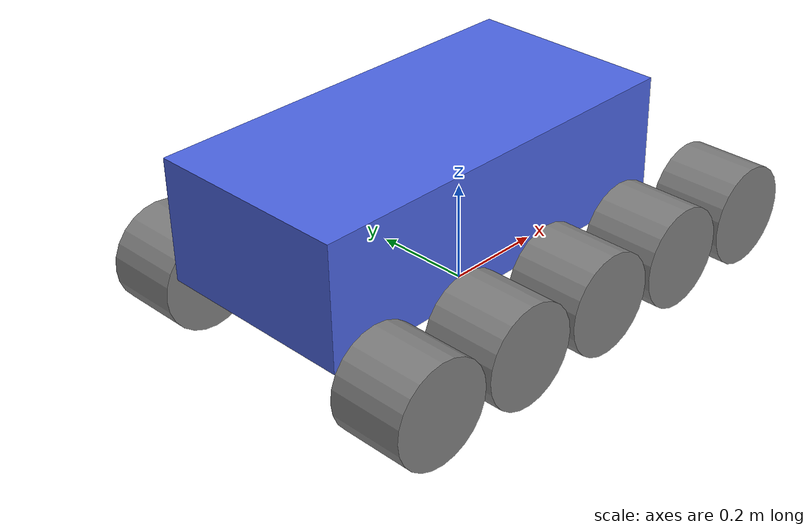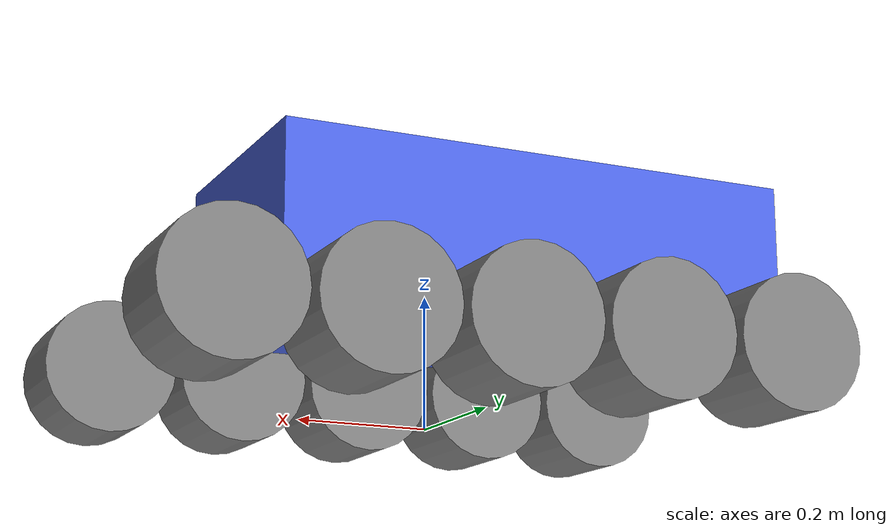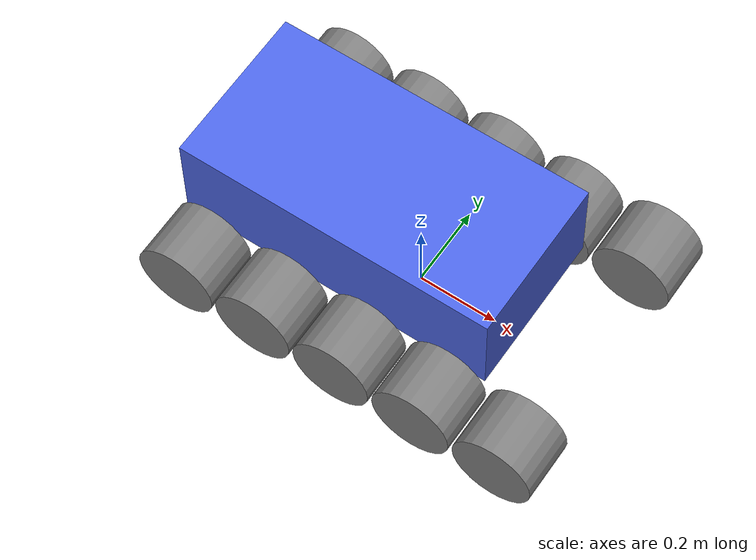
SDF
<?xml version="1.0" ?>
<sdf version="1.9">

  <model name="tracked_v2">
    <static>false</static>
    <pose>0 0 0 0 0 0</pose>

    <link name="chassis_link">
      <pose>-0.1 0 0.26 0 0 0</pose>

      <inertial>
          <mass>100.0</mass>
          <inertia>
          <ixx>1.81</ixx> <iyy>5.81</iyy> <izz>6.67</izz>
          <ixy>0.0</ixy> <ixz>0.0</ixz> <iyz>0.0</iyz>
          </inertia>
      </inertial>

      <collision name="chassis_collision">
          <geometry>
          <box><size>0.8 0.4 0.24</size></box>
          </geometry>
      </collision>

      <visual name="chassis_visual">
          <geometry>
          <box><size>0.8 0.4 0.24</size></box>
          </geometry>
          <material>
          <ambient>0.3 0.4 0.9 1</ambient>
          <diffuse>0.3 0.4 0.9 1</diffuse>
          </material>
      </visual>

      <sensor name="imu_sensor" type="imu">
          <always_on>true</always_on>
          <update_rate>100</update_rate>
          <visualize>false</visualize>
          <topic>imu</topic>
          <pose>0.1 0 0 0 0 0</pose>

      </sensor>

      <sensor name="navsat_sensor" type="navsat">
        <always_on>true</always_on>
        <update_rate>10.0</update_rate>
        <topic>navsat</topic>
        <visualize>false</visualize>
          <pose>0.1 0 0 0 0 0</pose>
      </sensor>

      <sensor name="magnetometer_sensor" type="magnetometer">
        <always_on>true</always_on>
        <update_rate>100.0</update_rate>
        <topic>magnetometer</topic>
          <pose>0.1 0 0 0 0 0</pose>

      </sensor>

    </link>

    <link name="wheel_R1_link">
        <pose>0.42 -0.285 0.1 1.5708 0 0</pose>

      <visual name="wheel_R1_visual">
        <geometry>
          <cylinder>
            <radius>0.1</radius>
            <length>0.15</length>
          </cylinder>
        </geometry>
        <material>
          <ambient>0.5 0.5 0.5 1</ambient>
          <diffuse>0.5 0.5 0.5 1</diffuse>
          <specular>0.1 0.1 0.1 1</specular>
        </material>
      </visual>

      <collision name="wheel_R1_collision">
        <geometry>
          <cylinder>
            <radius>0.1</radius>
            <length>0.15</length>
          </cylinder>
        </geometry>

        <surface>
          <friction>
            <ode>
              <mu>1.2</mu>
              <mu2>0.7</mu2>
              <fdir1>1 0 0</fdir1>
              <slip1>0.0</slip1>
              <slip2>0.001</slip2>
            </ode>
          </friction>
          <contact>
            <ode>
              <soft_cfm>0.002</soft_cfm>
              <soft_erp>0.002</soft_erp>
              <kp>1000</kp>
              <kd>500</kd>
            </ode>
          </contact>
        </surface>
      </collision>

      <inertial>
        <mass>5.0</mass>
        <inertia>
          <ixx>0.025</ixx>
          <iyy>0.025</iyy>
          <izz>0.031</izz>
          <ixy>0</ixy>
          <ixz>0</ixz>
          <iyz>0</iyz>
        </inertia>
      </inertial>
    </link>

    <joint name="wheel_R1_joint" type="revolute">
      <parent>chassis_link</parent>
      <child>wheel_R1_link</child>

      <pose>0 0 0 0 0 0</pose>

      <axis>
        <xyz>0 0 -1</xyz>

        <limit>
          <lower>-1.79769e+308</lower>
          <upper>1.79769e+308</upper>
          <effort>10000.0</effort>
          <velocity>10000.0</velocity>
        </limit>

        <dynamics>
          <damping>0.1</damping>
          <friction>0.01</friction>
        </dynamics>
      </axis>

      <physics>
        <provide_feedback>true</provide_feedback>
      </physics>

    </joint>

    <link name="wheel_R2_link">
        <pose>0.21 -0.285 0.1 1.5708 0 0</pose>

      <visual name="wheel_R2_visual">
        <geometry>
          <cylinder>
            <radius>0.1</radius>
            <length>0.15</length>
          </cylinder>
        </geometry>
        <material>
          <ambient>0.5 0.5 0.5 1</ambient>
          <diffuse>0.5 0.5 0.5 1</diffuse>
          <specular>0.1 0.1 0.1 1</specular>
        </material>
      </visual>

      <collision name="wheel_R2_collision">
        <geometry>
          <cylinder>
            <radius>0.1</radius>
            <length>0.15</length>
          </cylinder>
        </geometry>

        <surface>
          <friction>
            <ode>
              <mu>1.2</mu>
              <mu2>0.7</mu2>
              <fdir1>1 0 0</fdir1>
              <slip1>0.0</slip1>
              <slip2>0.001</slip2>
            </ode>
          </friction>
          <contact>
            <ode>
              <soft_cfm>0.002</soft_cfm>
              <soft_erp>0.002</soft_erp>
              <kp>1000</kp>
              <kd>500</kd>
            </ode>
          </contact>
        </surface>
      </collision>

      <inertial>
        <mass>5.0</mass>
        <inertia>
          <ixx>0.025</ixx>
          <iyy>0.025</iyy>
          <izz>0.031</izz>
          <ixy>0</ixy>
          <ixz>0</ixz>
          <iyz>0</iyz>
        </inertia>
      </inertial>
    </link>

    <joint name="wheel_R2_joint" type="revolute">
      <parent>chassis_link</parent>
      <child>wheel_R2_link</child>

      <pose>0 0 0 0 0 0</pose>

      <axis>
        <xyz>0 0 -1</xyz>

        <limit>
          <lower>-1.79769e+308</lower>
          <upper>1.79769e+308</upper>
          <effort>10000.0</effort>
          <velocity>10000.0</velocity>
        </limit>

        <dynamics>
          <damping>0.1</damping>
          <friction>0.01</friction>
        </dynamics>
      </axis>

      <physics>
        <provide_feedback>true</provide_feedback>
      </physics>

    </joint>

    <link name="wheel_R3_link">
        <pose>0 -0.285 0.1 1.5708 0 0</pose>

      <visual name="wheel_R3_visual">
        <geometry>
          <cylinder>
            <radius>0.1</radius>
            <length>0.15</length>
          </cylinder>
        </geometry>
        <material>
          <ambient>0.5 0.5 0.5 1</ambient>
          <diffuse>0.5 0.5 0.5 1</diffuse>
          <specular>0.1 0.1 0.1 1</specular>
        </material>
      </visual>

      <collision name="wheel_R3_collision">
        <geometry>
          <cylinder>
            <radius>0.1</radius>
            <length>0.15</length>
          </cylinder>
        </geometry>

        <surface>
          <friction>
            <ode>
              <mu>1.2</mu>
              <mu2>0.7</mu2>
              <fdir1>1 0 0</fdir1>
              <slip1>0.0</slip1>
              <slip2>0.001</slip2>
            </ode>
          </friction>
          <contact>
            <ode>
              <soft_cfm>0.002</soft_cfm>
              <soft_erp>0.002</soft_erp>
              <kp>1000</kp>
              <kd>500</kd>
            </ode>
          </contact>
        </surface>
      </collision>

      <inertial>
        <mass>5.0</mass>
        <inertia>
          <ixx>0.025</ixx>
          <iyy>0.025</iyy>
          <izz>0.031</izz>
          <ixy>0</ixy>
          <ixz>0</ixz>
          <iyz>0</iyz>
        </inertia>
      </inertial>
    </link>

    <joint name="wheel_R3_joint" type="revolute">
      <parent>chassis_link</parent>
      <child>wheel_R3_link</child>

      <pose>0 0 0 0 0 0</pose>

      <axis>
        <xyz>0 0 -1</xyz>

        <limit>
          <lower>-1.79769e+308</lower>
          <upper>1.79769e+308</upper>
          <effort>10000.0</effort>
          <velocity>10000.0</velocity>
        </limit>

        <dynamics>
          <damping>0.1</damping>
          <friction>0.01</friction>
        </dynamics>
      </axis>

      <physics>
        <provide_feedback>true</provide_feedback>
      </physics>

    </joint>

    <link name="wheel_R4_link">
        <pose>-0.21 -0.285 0.1 1.5708 0 0</pose>

      <visual name="wheel_R4_visual">
        <geometry>
          <cylinder>
            <radius>0.1</radius>
            <length>0.15</length>
          </cylinder>
        </geometry>
        <material>
          <ambient>0.5 0.5 0.5 1</ambient>
          <diffuse>0.5 0.5 0.5 1</diffuse>
          <specular>0.1 0.1 0.1 1</specular>
        </material>
      </visual>

      <collision name="wheel_R4_collision">
        <geometry>
          <cylinder>
            <radius>0.1</radius>
            <length>0.15</length>
          </cylinder>
        </geometry>

        <surface>
          <friction>
            <ode>
              <mu>1.2</mu>
              <mu2>0.7</mu2>
              <fdir1>1 0 0</fdir1>
              <slip1>0.0</slip1>
              <slip2>0.001</slip2>
            </ode>
          </friction>
          <contact>
            <ode>
              <soft_cfm>0.002</soft_cfm>
              <soft_erp>0.002</soft_erp>
              <kp>1000</kp>
              <kd>500</kd>
            </ode>
          </contact>
        </surface>
      </collision>

      <inertial>
        <mass>5.0</mass>
        <inertia>
          <ixx>0.025</ixx>
          <iyy>0.025</iyy>
          <izz>0.031</izz>
          <ixy>0</ixy>
          <ixz>0</ixz>
          <iyz>0</iyz>
        </inertia>
      </inertial>
    </link>

    <joint name="wheel_R4_joint" type="revolute">
      <parent>chassis_link</parent>
      <child>wheel_R4_link</child>

      <pose>0 0 0 0 0 0</pose>

      <axis>
        <xyz>0 0 -1</xyz>

        <limit>
          <lower>-1.79769e+308</lower>
          <upper>1.79769e+308</upper>
          <effort>10000.0</effort>
          <velocity>10000.0</velocity>
        </limit>

        <dynamics>
          <damping>0.1</damping>
          <friction>0.01</friction>
        </dynamics>
      </axis>

      <physics>
        <provide_feedback>true</provide_feedback>
      </physics>

    </joint>

    <link name="wheel_R5_link">
        <pose>-0.42 -0.285 0.1 1.5708 0 0</pose>

      <visual name="wheel_R5_visual">
        <geometry>
          <cylinder>
            <radius>0.1</radius>
            <length>0.15</length>
          </cylinder>
        </geometry>
        <material>
          <ambient>0.5 0.5 0.5 1</ambient>
          <diffuse>0.5 0.5 0.5 1</diffuse>
          <specular>0.1 0.1 0.1 1</specular>
        </material>
      </visual>

      <collision name="wheel_R5_collision">
        <geometry>
          <cylinder>
            <radius>0.1</radius>
            <length>0.15</length>
          </cylinder>
        </geometry>

        <surface>
          <friction>
            <ode>
              <mu>1.2</mu>
              <mu2>0.7</mu2>
              <fdir1>1 0 0</fdir1>
              <slip1>0.0</slip1>
              <slip2>0.001</slip2>
            </ode>
          </friction>
          <contact>
            <ode>
              <soft_cfm>0.002</soft_cfm>
              <soft_erp>0.002</soft_erp>
              <kp>1000</kp>
              <kd>500</kd>
            </ode>
          </contact>
        </surface>
      </collision>

      <inertial>
        <mass>5.0</mass>
        <inertia>
          <ixx>0.025</ixx>
          <iyy>0.025</iyy>
          <izz>0.031</izz>
          <ixy>0</ixy>
          <ixz>0</ixz>
          <iyz>0</iyz>
        </inertia>
      </inertial>
    </link>

    <joint name="wheel_R5_joint" type="revolute">
      <parent>chassis_link</parent>
      <child>wheel_R5_link</child>

      <pose>0 0 0 0 0 0</pose>

      <axis>
        <xyz>0 0 -1</xyz>

        <limit>
          <lower>-1.79769e+308</lower>
          <upper>1.79769e+308</upper>
          <effort>10000.0</effort>
          <velocity>10000.0</velocity>
        </limit>

        <dynamics>
          <damping>0.1</damping>
          <friction>0.01</friction>
        </dynamics>
      </axis>

      <physics>
        <provide_feedback>true</provide_feedback>
      </physics>

    </joint>

    <link name="wheel_L1_link">
        <pose>0.42 0.285 0.1 1.5708 0 0</pose>

      <visual name="wheel_L1_visual">
        <geometry>
          <cylinder>
            <radius>0.1</radius>
            <length>0.15</length>
          </cylinder>
        </geometry>
        <material>
          <ambient>0.5 0.5 0.5 1</ambient>
          <diffuse>0.5 0.5 0.5 1</diffuse>
          <specular>0.1 0.1 0.1 1</specular>
        </material>
      </visual>

      <collision name="wheel_L1_collision">
        <geometry>
          <cylinder>
            <radius>0.1</radius>
            <length>0.15</length>
          </cylinder>
        </geometry>

        <surface>
          <friction>
            <ode>
              <mu>1.2</mu>
              <mu2>0.7</mu2>
              <fdir1>1 0 0</fdir1>
              <slip1>0.0</slip1>
              <slip2>0.001</slip2>
            </ode>
          </friction>
          <contact>
            <ode>
              <soft_cfm>0.002</soft_cfm>
              <soft_erp>0.002</soft_erp>
              <kp>1000</kp>
              <kd>500</kd>
            </ode>
          </contact>
        </surface>
      </collision>

      <inertial>
        <mass>5.0</mass>
        <inertia>
          <ixx>0.025</ixx>
          <iyy>0.025</iyy>
          <izz>0.031</izz>
          <ixy>0</ixy>
          <ixz>0</ixz>
          <iyz>0</iyz>
        </inertia>
      </inertial>
    </link>

    <joint name="wheel_L1_joint" type="revolute">
      <parent>chassis_link</parent>
      <child>wheel_L1_link</child>

      <pose>0 0 0 0 0 0</pose>

      <axis>
        <xyz>0 0 -1</xyz>

        <limit>
          <lower>-1.79769e+308</lower>
          <upper>1.79769e+308</upper>
          <effort>10000.0</effort>
          <velocity>10000.0</velocity>
        </limit>

        <dynamics>
          <damping>0.1</damping>
          <friction>0.01</friction>
        </dynamics>
      </axis>

      <physics>
        <provide_feedback>true</provide_feedback>
      </physics>

    </joint>

    <link name="wheel_L2_link">
        <pose>0.21 0.285 0.1 1.5708 0 0</pose>

      <visual name="wheel_L2_visual">
        <geometry>
          <cylinder>
            <radius>0.1</radius>
            <length>0.15</length>
          </cylinder>
        </geometry>
        <material>
          <ambient>0.5 0.5 0.5 1</ambient>
          <diffuse>0.5 0.5 0.5 1</diffuse>
          <specular>0.1 0.1 0.1 1</specular>
        </material>
      </visual>

      <collision name="wheel_L2_collision">
        <geometry>
          <cylinder>
            <radius>0.1</radius>
            <length>0.15</length>
          </cylinder>
        </geometry>

        <surface>
          <friction>
            <ode>
              <mu>1.2</mu>
              <mu2>0.7</mu2>
              <fdir1>1 0 0</fdir1>
              <slip1>0.0</slip1>
              <slip2>0.001</slip2>
            </ode>
          </friction>
          <contact>
            <ode>
              <soft_cfm>0.002</soft_cfm>
              <soft_erp>0.002</soft_erp>
              <kp>1000</kp>
              <kd>500</kd>
            </ode>
          </contact>
        </surface>
      </collision>

      <inertial>
        <mass>5.0</mass>
        <inertia>
          <ixx>0.025</ixx>
          <iyy>0.025</iyy>
          <izz>0.031</izz>
          <ixy>0</ixy>
          <ixz>0</ixz>
          <iyz>0</iyz>
        </inertia>
      </inertial>
    </link>

    <joint name="wheel_L2_joint" type="revolute">
      <parent>chassis_link</parent>
      <child>wheel_L2_link</child>

      <pose>0 0 0 0 0 0</pose>

      <axis>
        <xyz>0 0 -1</xyz>

        <limit>
          <lower>-1.79769e+308</lower>
          <upper>1.79769e+308</upper>
          <effort>10000.0</effort>
          <velocity>10000.0</velocity>
        </limit>

        <dynamics>
          <damping>0.1</damping>
          <friction>0.01</friction>
        </dynamics>
      </axis>

      <physics>
        <provide_feedback>true</provide_feedback>
      </physics>

    </joint>

    <link name="wheel_L3_link">
        <pose>0 0.285 0.1 1.5708 0 0</pose>

      <visual name="wheel_L3_visual">
        <geometry>
          <cylinder>
            <radius>0.1</radius>
            <length>0.15</length>
          </cylinder>
        </geometry>
        <material>
          <ambient>0.5 0.5 0.5 1</ambient>
          <diffuse>0.5 0.5 0.5 1</diffuse>
          <specular>0.1 0.1 0.1 1</specular>
        </material>
      </visual>

      <collision name="wheel_L3_collision">
        <geometry>
          <cylinder>
            <radius>0.1</radius>
            <length>0.15</length>
          </cylinder>
        </geometry>

        <surface>
          <friction>
            <ode>
              <mu>1.2</mu>
              <mu2>0.7</mu2>
              <fdir1>1 0 0</fdir1>
              <slip1>0.0</slip1>
              <slip2>0.001</slip2>
            </ode>
          </friction>
          <contact>
            <ode>
              <soft_cfm>0.002</soft_cfm>
              <soft_erp>0.002</soft_erp>
              <kp>1000</kp>
              <kd>500</kd>
            </ode>
          </contact>
        </surface>
      </collision>

      <inertial>
        <mass>5.0</mass>
        <inertia>
          <ixx>0.025</ixx>
          <iyy>0.025</iyy>
          <izz>0.031</izz>
          <ixy>0</ixy>
          <ixz>0</ixz>
          <iyz>0</iyz>
        </inertia>
      </inertial>
    </link>

    <joint name="wheel_L3_joint" type="revolute">
      <parent>chassis_link</parent>
      <child>wheel_L3_link</child>

      <pose>0 0 0 0 0 0</pose>

      <axis>
        <xyz>0 0 -1</xyz>

        <limit>
          <lower>-1.79769e+308</lower>
          <upper>1.79769e+308</upper>
          <effort>10000.0</effort>
          <velocity>10000.0</velocity>
        </limit>

        <dynamics>
          <damping>0.1</damping>
          <friction>0.01</friction>
        </dynamics>
      </axis>

      <physics>
        <provide_feedback>true</provide_feedback>
      </physics>

    </joint>

    <link name="wheel_L4_link">
        <pose>-0.21 0.285 0.1 1.5708 0 0</pose>

      <visual name="wheel_L4_visual">
        <geometry>
          <cylinder>
            <radius>0.1</radius>
            <length>0.15</length>
          </cylinder>
        </geometry>
        <material>
          <ambient>0.5 0.5 0.5 1</ambient>
          <diffuse>0.5 0.5 0.5 1</diffuse>
          <specular>0.1 0.1 0.1 1</specular>
        </material>
      </visual>

      <collision name="wheel_L4_collision">
        <geometry>
          <cylinder>
            <radius>0.1</radius>
            <length>0.15</length>
          </cylinder>
        </geometry>

        <surface>
          <friction>
            <ode>
              <mu>1.2</mu>
              <mu2>0.7</mu2>
              <fdir1>1 0 0</fdir1>
              <slip1>0.0</slip1>
              <slip2>0.001</slip2>
            </ode>
          </friction>
          <contact>
            <ode>
              <soft_cfm>0.002</soft_cfm>
              <soft_erp>0.002</soft_erp>
              <kp>1000</kp>
              <kd>500</kd>
            </ode>
          </contact>
        </surface>
      </collision>

      <inertial>
        <mass>5.0</mass>
        <inertia>
          <ixx>0.025</ixx>
          <iyy>0.025</iyy>
          <izz>0.031</izz>
          <ixy>0</ixy>
          <ixz>0</ixz>
          <iyz>0</iyz>
        </inertia>
      </inertial>
    </link>

    <joint name="wheel_L4_joint" type="revolute">
      <parent>chassis_link</parent>
      <child>wheel_L4_link</child>

      <pose>0 0 0 0 0 0</pose>

      <axis>
        <xyz>0 0 -1</xyz>

        <limit>
          <lower>-1.79769e+308</lower>
          <upper>1.79769e+308</upper>
          <effort>10000.0</effort>
          <velocity>10000.0</velocity>
        </limit>

        <dynamics>
          <damping>0.1</damping>
          <friction>0.01</friction>
        </dynamics>
      </axis>

      <physics>
        <provide_feedback>true</provide_feedback>
      </physics>

    </joint>

    <link name="wheel_L5_link">
        <pose>-0.42 0.285 0.1 1.5708 0 0</pose>

      <visual name="wheel_L5_visual">
        <geometry>
          <cylinder>
            <radius>0.1</radius>
            <length>0.15</length>
          </cylinder>
        </geometry>
        <material>
          <ambient>0.5 0.5 0.5 1</ambient>
          <diffuse>0.5 0.5 0.5 1</diffuse>
          <specular>0.1 0.1 0.1 1</specular>
        </material>
      </visual>

      <collision name="wheel_L5_collision">
        <geometry>
          <cylinder>
            <radius>0.1</radius>
            <length>0.15</length>
          </cylinder>
        </geometry>

        <surface>
          <friction>
            <ode>
              <mu>1.2</mu>
              <mu2>0.7</mu2>
              <fdir1>1 0 0</fdir1>
              <slip1>0.0</slip1>
              <slip2>0.001</slip2>
            </ode>
          </friction>
          <contact>
            <ode>
              <soft_cfm>0.002</soft_cfm>
              <soft_erp>0.002</soft_erp>
              <kp>1000</kp>
              <kd>500</kd>
            </ode>
          </contact>
        </surface>
      </collision>

      <inertial>
        <mass>5.0</mass>
        <inertia>
          <ixx>0.025</ixx>
          <iyy>0.025</iyy>
          <izz>0.031</izz>
          <ixy>0</ixy>
          <ixz>0</ixz>
          <iyz>0</iyz>
        </inertia>
      </inertial>
    </link>

    <joint name="wheel_L5_joint" type="revolute">
      <parent>chassis_link</parent>
      <child>wheel_L5_link</child>

      <pose>0 0 0 0 0 0</pose>

      <axis>
        <xyz>0 0 -1</xyz>

        <limit>
          <lower>-1.79769e+308</lower>
          <upper>1.79769e+308</upper>
          <effort>10000.0</effort>
          <velocity>10000.0</velocity>
        </limit>

        <dynamics>
          <damping>0.1</damping>
          <friction>0.01</friction>
        </dynamics>
      </axis>

      <physics>
        <provide_feedback>true</provide_feedback>
      </physics>

    </joint>

  </model>
</sdf>
